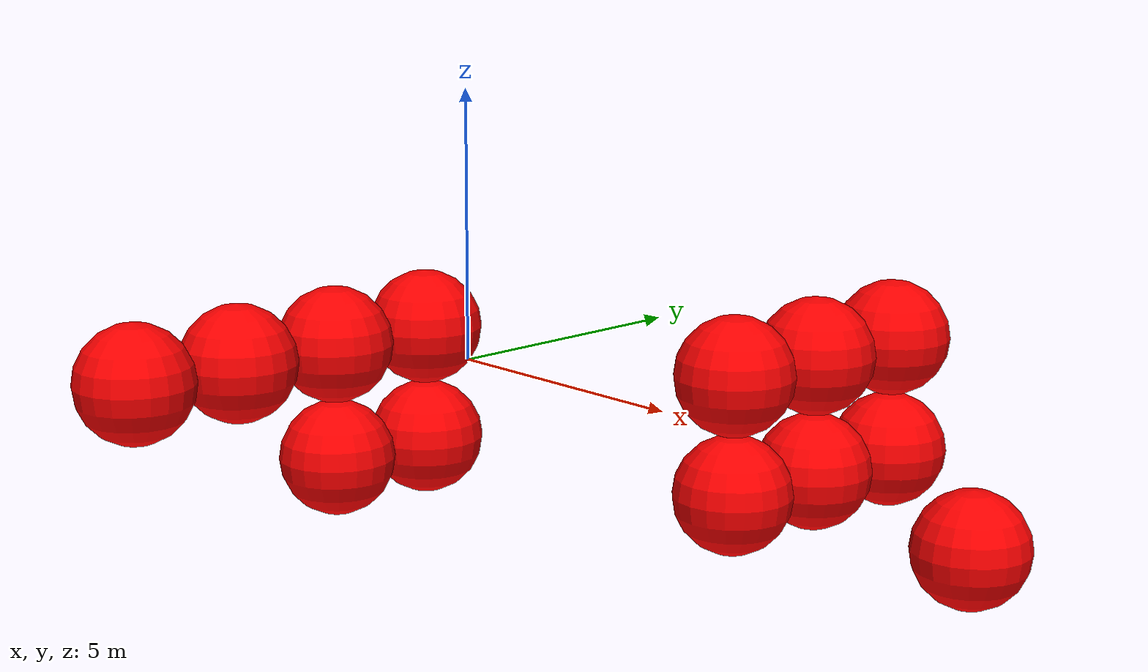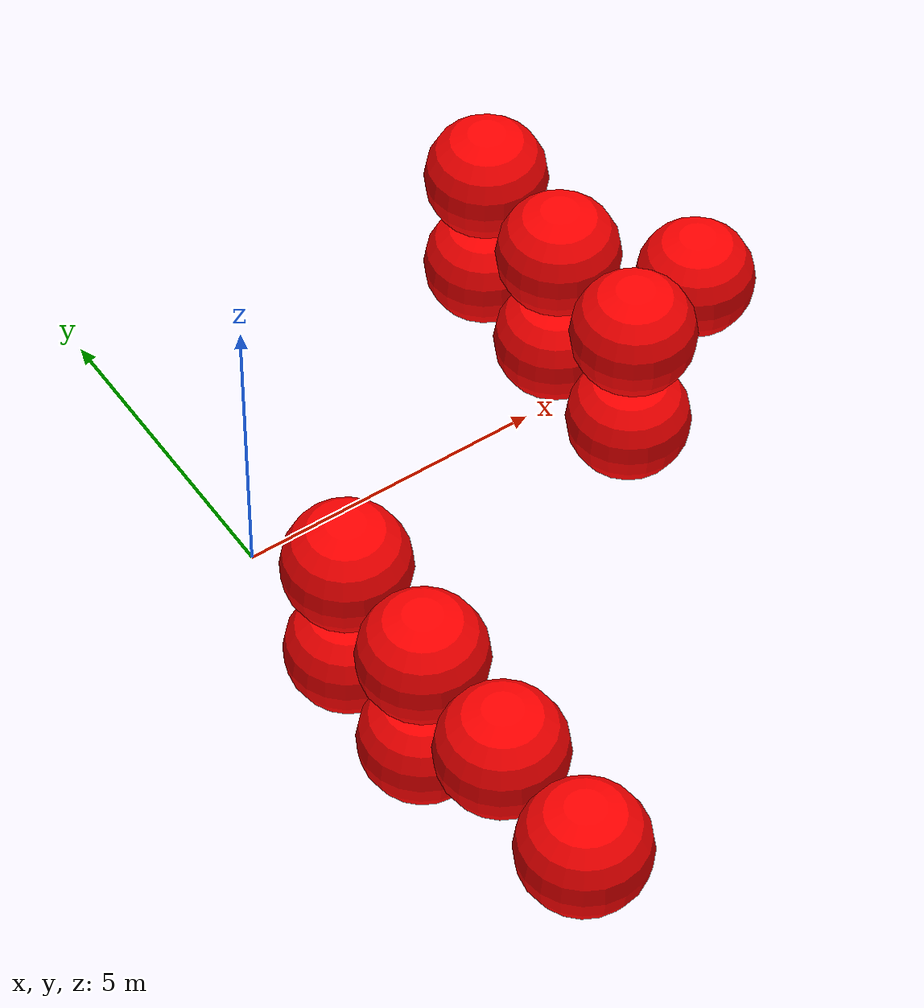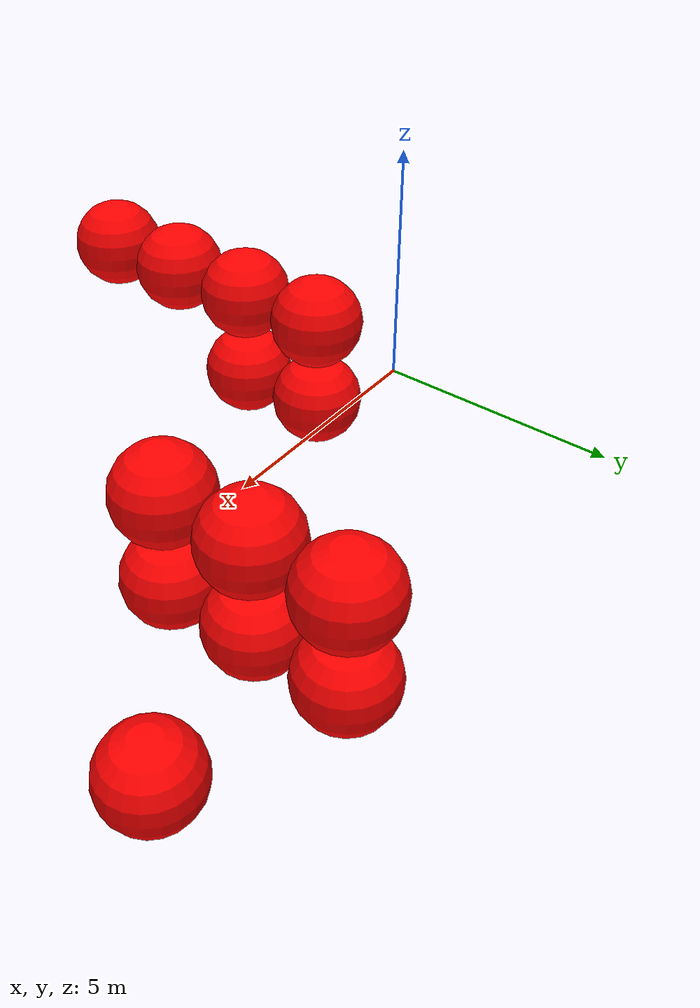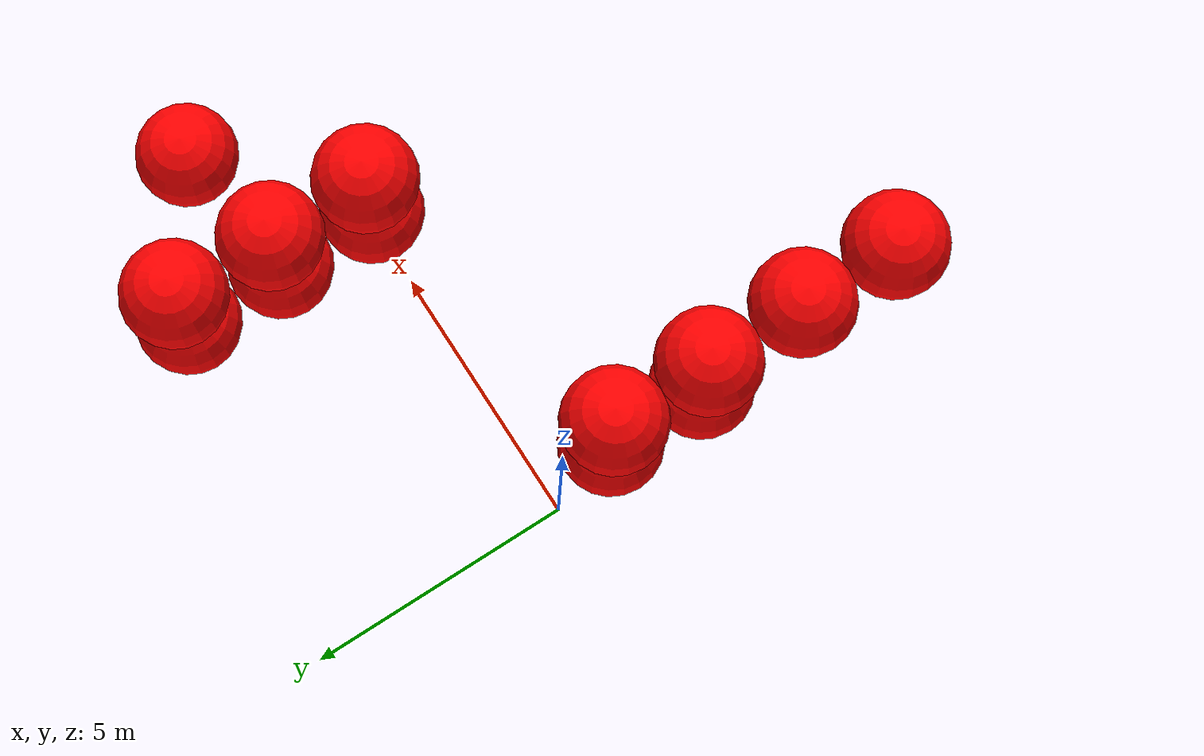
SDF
<sdf version="1.8">
 <world name="3d_world">
  <model name="obstacle_3" canonical_link="obstacle">
   <static>true</static>
   <pose relative_to="world">0.68 -3.58 -1.00 0 0 0</pose>
   <link name="obstacle">
    <pose relative_to="__model__">0.0 0 0.0 0 0 0</pose>
    <visual name="visual">
     <geometry><sphere><radius>1.00</radius></sphere></geometry>
     <material>
      <ambient>1.0 0.0 0.0 1</ambient>
      <diffuse>1.0 0.0 0.0 1</diffuse>
      <specular>1.0 0.0 0.0 1</specular>
     </material>
    </visual>
    <collision name="collision"><geometry><sphere><radius>1.00</radius></sphere></geometry></collision>
    <enable_gravity>false</enable_gravity>
   </link>
   <plugin filename="ignition-gazebo-velocity-control-system" name="ignition::gazebo::systems::VelocityControl">
    <initial_linear>0.00 0.00 0.00</initial_linear>
    <initial_angular>0 0 0</initial_angular>
   </plugin>
   <plugin filename="ignition-gazebo-odometry-publisher-system" name="ignition::gazebo::systems::OdometryPublisher">
    <dimensions>3</dimensions>
   </plugin>
  </model>
  <model name="obstacle_4" canonical_link="obstacle">
   <static>true</static>
   <pose relative_to="world">0.68 -1.58 -1.00 0 0 0</pose>
   <link name="obstacle">
    <pose relative_to="__model__">0.0 0 0.0 0 0 0</pose>
    <visual name="visual">
     <geometry><sphere><radius>1.00</radius></sphere></geometry>
     <material>
      <ambient>1.0 0.0 0.0 1</ambient>
      <diffuse>1.0 0.0 0.0 1</diffuse>
      <specular>1.0 0.0 0.0 1</specular>
     </material>
    </visual>
    <collision name="collision"><geometry><sphere><radius>1.00</radius></sphere></geometry></collision>
    <enable_gravity>false</enable_gravity>
   </link>
   <plugin filename="ignition-gazebo-velocity-control-system" name="ignition::gazebo::systems::VelocityControl">
    <initial_linear>0.00 0.00 0.00</initial_linear>
    <initial_angular>0 0 0</initial_angular>
   </plugin>
   <plugin filename="ignition-gazebo-odometry-publisher-system" name="ignition::gazebo::systems::OdometryPublisher">
    <dimensions>3</dimensions>
   </plugin>
  </model>
  <model name="obstacle_5" canonical_link="obstacle">
   <static>true</static>
   <pose relative_to="world">0.68 -7.58 1.00 0 0 0</pose>
   <link name="obstacle">
    <pose relative_to="__model__">0.0 0 0.0 0 0 0</pose>
    <visual name="visual">
     <geometry><sphere><radius>1.00</radius></sphere></geometry>
     <material>
      <ambient>1.0 0.0 0.0 1</ambient>
      <diffuse>1.0 0.0 0.0 1</diffuse>
      <specular>1.0 0.0 0.0 1</specular>
     </material>
    </visual>
    <collision name="collision"><geometry><sphere><radius>1.00</radius></sphere></geometry></collision>
    <enable_gravity>false</enable_gravity>
   </link>
   <plugin filename="ignition-gazebo-velocity-control-system" name="ignition::gazebo::systems::VelocityControl">
    <initial_linear>0.00 0.00 0.00</initial_linear>
    <initial_angular>0 0 0</initial_angular>
   </plugin>
   <plugin filename="ignition-gazebo-odometry-publisher-system" name="ignition::gazebo::systems::OdometryPublisher">
    <dimensions>3</dimensions>
   </plugin>
  </model>
  <model name="obstacle_6" canonical_link="obstacle">
   <static>true</static>
   <pose relative_to="world">0.68 -5.58 1.00 0 0 0</pose>
   <link name="obstacle">
    <pose relative_to="__model__">0.0 0 0.0 0 0 0</pose>
    <visual name="visual">
     <geometry><sphere><radius>1.00</radius></sphere></geometry>
     <material>
      <ambient>1.0 0.0 0.0 1</ambient>
      <diffuse>1.0 0.0 0.0 1</diffuse>
      <specular>1.0 0.0 0.0 1</specular>
     </material>
    </visual>
    <collision name="collision"><geometry><sphere><radius>1.00</radius></sphere></geometry></collision>
    <enable_gravity>false</enable_gravity>
   </link>
   <plugin filename="ignition-gazebo-velocity-control-system" name="ignition::gazebo::systems::VelocityControl">
    <initial_linear>0.00 0.00 0.00</initial_linear>
    <initial_angular>0 0 0</initial_angular>
   </plugin>
   <plugin filename="ignition-gazebo-odometry-publisher-system" name="ignition::gazebo::systems::OdometryPublisher">
    <dimensions>3</dimensions>
   </plugin>
  </model>
  <model name="obstacle_7" canonical_link="obstacle">
   <static>true</static>
   <pose relative_to="world">0.68 -3.58 1.00 0 0 0</pose>
   <link name="obstacle">
    <pose relative_to="__model__">0.0 0 0.0 0 0 0</pose>
    <visual name="visual">
     <geometry><sphere><radius>1.00</radius></sphere></geometry>
     <material>
      <ambient>1.0 0.0 0.0 1</ambient>
      <diffuse>1.0 0.0 0.0 1</diffuse>
      <specular>1.0 0.0 0.0 1</specular>
     </material>
    </visual>
    <collision name="collision"><geometry><sphere><radius>1.00</radius></sphere></geometry></collision>
    <enable_gravity>false</enable_gravity>
   </link>
   <plugin filename="ignition-gazebo-velocity-control-system" name="ignition::gazebo::systems::VelocityControl">
    <initial_linear>0.00 0.00 0.00</initial_linear>
    <initial_angular>0 0 0</initial_angular>
   </plugin>
   <plugin filename="ignition-gazebo-odometry-publisher-system" name="ignition::gazebo::systems::OdometryPublisher">
    <dimensions>3</dimensions>
   </plugin>
  </model>
  <model name="obstacle_8" canonical_link="obstacle">
   <static>true</static>
   <pose relative_to="world">0.68 -1.58 1.00 0 0 0</pose>
   <link name="obstacle">
    <pose relative_to="__model__">0.0 0 0.0 0 0 0</pose>
    <visual name="visual">
     <geometry><sphere><radius>1.00</radius></sphere></geometry>
     <material>
      <ambient>1.0 0.0 0.0 1</ambient>
      <diffuse>1.0 0.0 0.0 1</diffuse>
      <specular>1.0 0.0 0.0 1</specular>
     </material>
    </visual>
    <collision name="collision"><geometry><sphere><radius>1.00</radius></sphere></geometry></collision>
    <enable_gravity>false</enable_gravity>
   </link>
   <plugin filename="ignition-gazebo-velocity-control-system" name="ignition::gazebo::systems::VelocityControl">
    <initial_linear>0.00 0.00 0.00</initial_linear>
    <initial_angular>0 0 0</initial_angular>
   </plugin>
   <plugin filename="ignition-gazebo-odometry-publisher-system" name="ignition::gazebo::systems::OdometryPublisher">
    <dimensions>3</dimensions>
   </plugin>
  </model>
  <model name="obstacle_9" canonical_link="obstacle">
   <static>true</static>
   <pose relative_to="world">6.83 -0.21 -1.00 0 0 0</pose>
   <link name="obstacle">
    <pose relative_to="__model__">0.0 0 0.0 0 0 0</pose>
    <visual name="visual">
     <geometry><sphere><radius>1.00</radius></sphere></geometry>
     <material>
      <ambient>1.0 0.0 0.0 1</ambient>
      <diffuse>1.0 0.0 0.0 1</diffuse>
      <specular>1.0 0.0 0.0 1</specular>
     </material>
    </visual>
    <collision name="collision"><geometry><sphere><radius>1.00</radius></sphere></geometry></collision>
    <enable_gravity>false</enable_gravity>
   </link>
   <plugin filename="ignition-gazebo-velocity-control-system" name="ignition::gazebo::systems::VelocityControl">
    <initial_linear>0.00 0.00 0.00</initial_linear>
    <initial_angular>0 0 0</initial_angular>
   </plugin>
   <plugin filename="ignition-gazebo-odometry-publisher-system" name="ignition::gazebo::systems::OdometryPublisher">
    <dimensions>3</dimensions>
   </plugin>
  </model>
  <model name="obstacle_10" canonical_link="obstacle">
   <static>true</static>
   <pose relative_to="world">6.83 1.79 -1.00 0 0 0</pose>
   <link name="obstacle">
    <pose relative_to="__model__">0.0 0 0.0 0 0 0</pose>
    <visual name="visual">
     <geometry><sphere><radius>1.00</radius></sphere></geometry>
     <material>
      <ambient>1.0 0.0 0.0 1</ambient>
      <diffuse>1.0 0.0 0.0 1</diffuse>
      <specular>1.0 0.0 0.0 1</specular>
     </material>
    </visual>
    <collision name="collision"><geometry><sphere><radius>1.00</radius></sphere></geometry></collision>
    <enable_gravity>false</enable_gravity>
   </link>
   <plugin filename="ignition-gazebo-velocity-control-system" name="ignition::gazebo::systems::VelocityControl">
    <initial_linear>0.00 0.00 0.00</initial_linear>
    <initial_angular>0 0 0</initial_angular>
   </plugin>
   <plugin filename="ignition-gazebo-odometry-publisher-system" name="ignition::gazebo::systems::OdometryPublisher">
    <dimensions>3</dimensions>
   </plugin>
  </model>
  <model name="obstacle_11" canonical_link="obstacle">
   <static>true</static>
   <pose relative_to="world">6.83 3.79 -1.00 0 0 0</pose>
   <link name="obstacle">
    <pose relative_to="__model__">0.0 0 0.0 0 0 0</pose>
    <visual name="visual">
     <geometry><sphere><radius>1.00</radius></sphere></geometry>
     <material>
      <ambient>1.0 0.0 0.0 1</ambient>
      <diffuse>1.0 0.0 0.0 1</diffuse>
      <specular>1.0 0.0 0.0 1</specular>
     </material>
    </visual>
    <collision name="collision"><geometry><sphere><radius>1.00</radius></sphere></geometry></collision>
    <enable_gravity>false</enable_gravity>
   </link>
   <plugin filename="ignition-gazebo-velocity-control-system" name="ignition::gazebo::systems::VelocityControl">
    <initial_linear>0.00 0.00 0.00</initial_linear>
    <initial_angular>0 0 0</initial_angular>
   </plugin>
   <plugin filename="ignition-gazebo-odometry-publisher-system" name="ignition::gazebo::systems::OdometryPublisher">
    <dimensions>3</dimensions>
   </plugin>
  </model>
  <model name="obstacle_12" canonical_link="obstacle">
   <static>true</static>
   <pose relative_to="world">6.83 -0.21 1.00 0 0 0</pose>
   <link name="obstacle">
    <pose relative_to="__model__">0.0 0 0.0 0 0 0</pose>
    <visual name="visual">
     <geometry><sphere><radius>1.00</radius></sphere></geometry>
     <material>
      <ambient>1.0 0.0 0.0 1</ambient>
      <diffuse>1.0 0.0 0.0 1</diffuse>
      <specular>1.0 0.0 0.0 1</specular>
     </material>
    </visual>
    <collision name="collision"><geometry><sphere><radius>1.00</radius></sphere></geometry></collision>
    <enable_gravity>false</enable_gravity>
   </link>
   <plugin filename="ignition-gazebo-velocity-control-system" name="ignition::gazebo::systems::VelocityControl">
    <initial_linear>0.00 0.00 0.00</initial_linear>
    <initial_angular>0 0 0</initial_angular>
   </plugin>
   <plugin filename="ignition-gazebo-odometry-publisher-system" name="ignition::gazebo::systems::OdometryPublisher">
    <dimensions>3</dimensions>
   </plugin>
  </model>
  <model name="obstacle_13" canonical_link="obstacle">
   <static>true</static>
   <pose relative_to="world">6.83 1.79 1.00 0 0 0</pose>
   <link name="obstacle">
    <pose relative_to="__model__">0.0 0 0.0 0 0 0</pose>
    <visual name="visual">
     <geometry><sphere><radius>1.00</radius></sphere></geometry>
     <material>
      <ambient>1.0 0.0 0.0 1</ambient>
      <diffuse>1.0 0.0 0.0 1</diffuse>
      <specular>1.0 0.0 0.0 1</specular>
     </material>
    </visual>
    <collision name="collision"><geometry><sphere><radius>1.00</radius></sphere></geometry></collision>
    <enable_gravity>false</enable_gravity>
   </link>
   <plugin filename="ignition-gazebo-velocity-control-system" name="ignition::gazebo::systems::VelocityControl">
    <initial_linear>0.00 0.00 0.00</initial_linear>
    <initial_angular>0 0 0</initial_angular>
   </plugin>
   <plugin filename="ignition-gazebo-odometry-publisher-system" name="ignition::gazebo::systems::OdometryPublisher">
    <dimensions>3</dimensions>
   </plugin>
  </model>
  <model name="obstacle_14" canonical_link="obstacle">
   <static>true</static>
   <pose relative_to="world">6.83 3.79 1.00 0 0 0</pose>
   <link name="obstacle">
    <pose relative_to="__model__">0.0 0 0.0 0 0 0</pose>
    <visual name="visual">
     <geometry><sphere><radius>1.00</radius></sphere></geometry>
     <material>
      <ambient>1.0 0.0 0.0 1</ambient>
      <diffuse>1.0 0.0 0.0 1</diffuse>
      <specular>1.0 0.0 0.0 1</specular>
     </material>
    </visual>
    <collision name="collision"><geometry><sphere><radius>1.00</radius></sphere></geometry></collision>
    <enable_gravity>false</enable_gravity>
   </link>
   <plugin filename="ignition-gazebo-velocity-control-system" name="ignition::gazebo::systems::VelocityControl">
    <initial_linear>0.00 0.00 0.00</initial_linear>
    <initial_angular>0 0 0</initial_angular>
   </plugin>
   <plugin filename="ignition-gazebo-odometry-publisher-system" name="ignition::gazebo::systems::OdometryPublisher">
    <dimensions>3</dimensions>
   </plugin>
  </model>
  <model name="obstacle_25" canonical_link="obstacle">
   <static>false</static>
   <pose relative_to="world">9.90 2.13 -1.72 0 0 0</pose>
   <link name="obstacle">
    <pose relative_to="__model__">0.0 0 0.0 0 0 0</pose>
    <visual name="visual">
     <geometry><sphere><radius>1.00</radius></sphere></geometry>
     <material>
      <ambient>1.0 0.0 0.0 1</ambient>
      <diffuse>1.0 0.0 0.0 1</diffuse>
      <specular>1.0 0.0 0.0 1</specular>
     </material>
    </visual>
    <collision name="collision"><geometry><sphere><radius>1.00</radius></sphere></geometry></collision>
    <enable_gravity>false</enable_gravity>
   </link>
   <plugin filename="ignition-gazebo-velocity-control-system" name="ignition::gazebo::systems::VelocityControl">
    <initial_linear>0.00 -0.74 0.51</initial_linear>
    <initial_angular>0 0 0</initial_angular>
   </plugin>
   <plugin filename="ignition-gazebo-odometry-publisher-system" name="ignition::gazebo::systems::OdometryPublisher">
    <dimensions>3</dimensions>
   </plugin>
  </model>
 </world>
</sdf>
